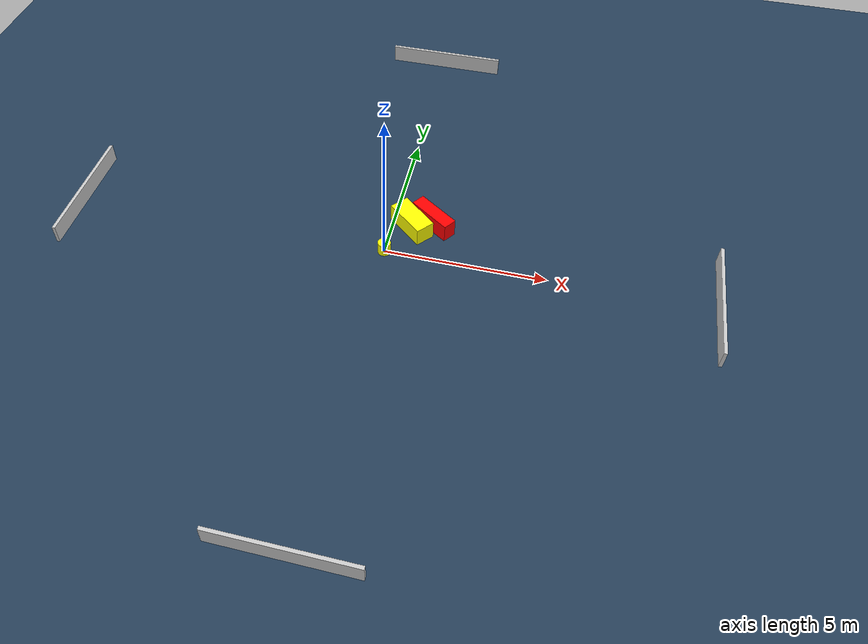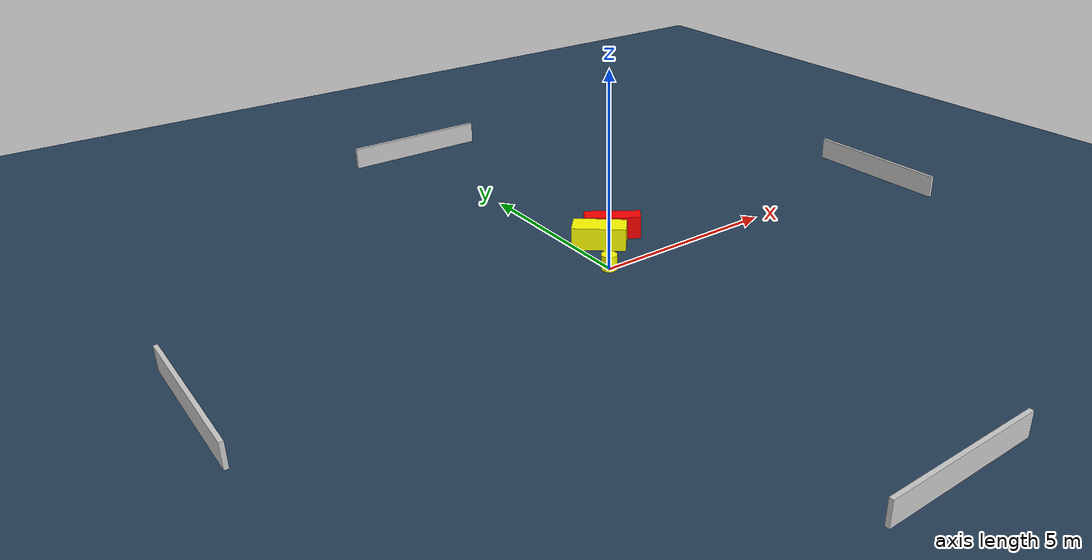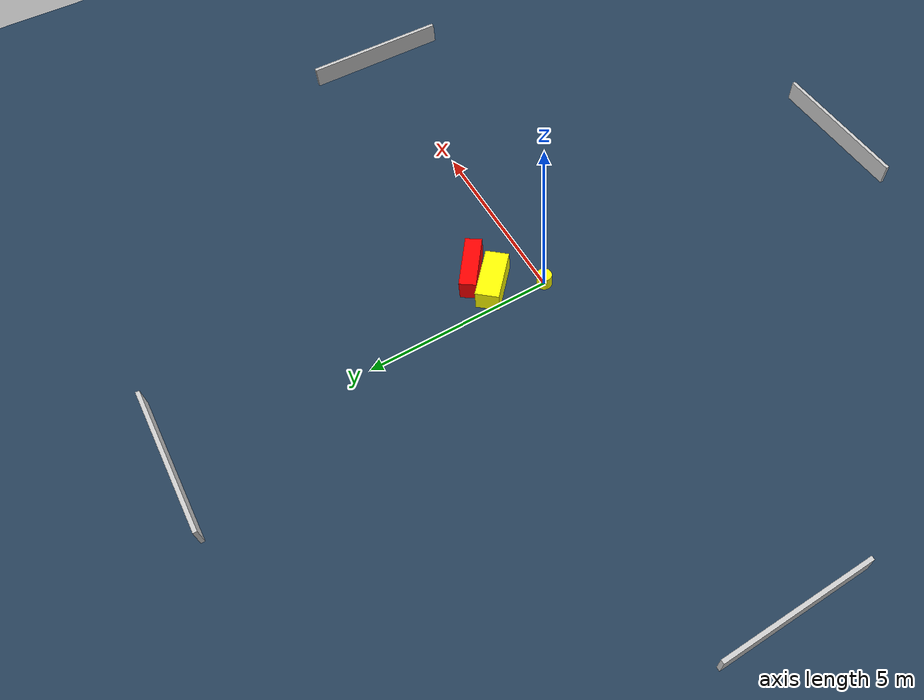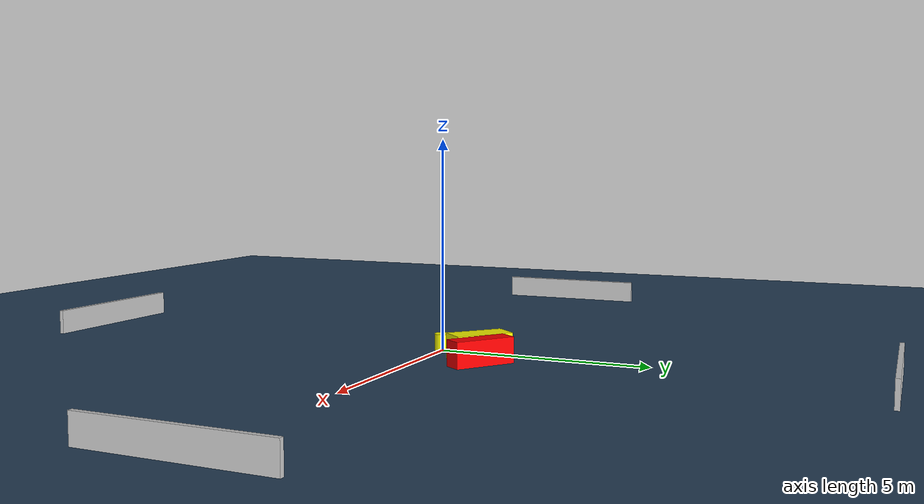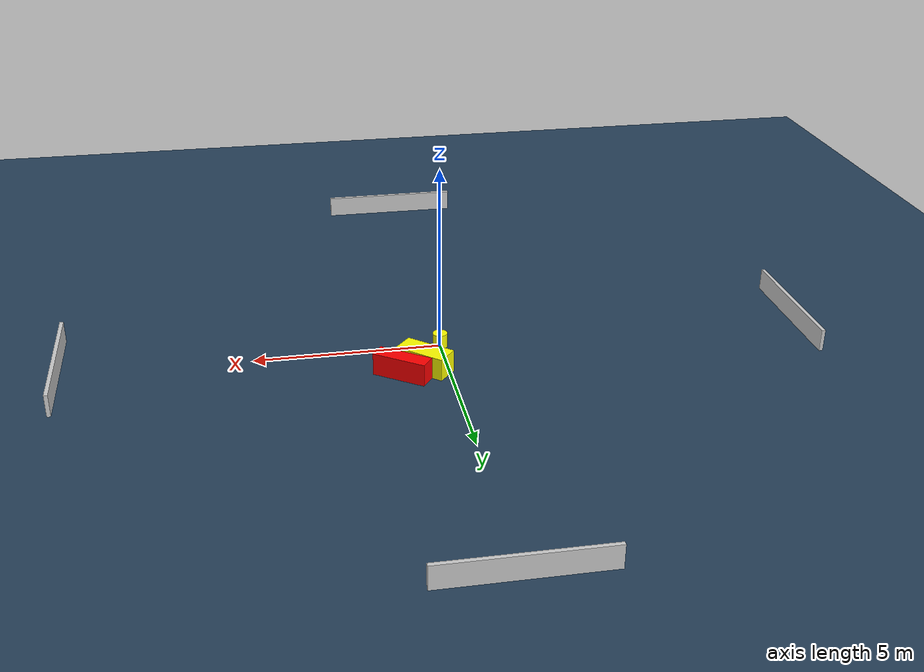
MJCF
<?xml version="1.0" ?>
<mujoco model="generated_environment">
  <option timestep="0.01" integrator="RK4" cone="elliptic"/>
  <default>
    <geom density="1"/>
  </default>
  <asset>
    <texture builtin="gradient" height="3072" name="skybox" rgb1="0.3 0.5 0.7" rgb2="0 0 0" type="skybox" width="512"/>
    <texture builtin="checker" height="300" name="groundplane" rgb1="0.2 0.3 0.4" rgb2="0.1 0.2 0.3" type="2d" width="300"/>
    <material name="groundplane" reflectance="0.2" texrepeat="5 5" texture="groundplane"/>
  </asset>
  <worldbody>
    <light dir="0 0 -1" directional="true" pos="0 0 1.5"/>
    <geom condim="3" friction="0.5 0.005 0.001" material="groundplane" name="floor" pos="0 0 0" size="0 0 0.05" type="plane"/>
    <body name="walls">
      <geom name="wall_1" condim="4" pos="-10.0 0.0 0.3" rgba="0.800000011920929 0.800000011920929 0.800000011920929 1.0" size="0.05 2.0 0.3" type="box"/>
      <geom name="wall_2" condim="4" pos="10.0 0.0 0.3" rgba="0.800000011920929 0.800000011920929 0.800000011920929 1.0" size="0.05 2.0 0.3" type="box"/>
      <geom name="wall_3" condim="4" pos="0.0 -10.0 0.3" rgba="0.800000011920929 0.800000011920929 0.800000011920929 1.0" size="2.0 0.05 0.3" type="box"/>
      <geom name="wall_4" condim="4" pos="0.0 10.0 0.3" rgba="0.800000011920929 0.800000011920929 0.800000011920929 1.0" size="2.0 0.05 0.3" type="box"/>
    </body>
    <body name="robot">
      <joint name="joint_x" type="slide" pos="0 0 0" axis="1 0 0"/>
      <joint name="joint_y" type="slide" pos="0 0 0" axis="0 1 0"/>
      <geom name="robot" type="cylinder" pos="0.0 0.0 0.2" size="0.2 0.2 0.0" mass="5.0" friction="1.0 0.005 0.0001" condim="4" rgba="1.0 1.0 0.0 1.0"/>
    </body>
    <body name="obstacle_1_movable">
      <geom name="obstacle_1_movable" condim="4" pos="0.6052807444178986 1.1961337806894106 0.3" euler="0 0 228.9342033387749" friction="0.0 0.005 0.001" rgba="1.0 1.0 0.0 1.0" size="0.31350086411333944 0.691674021193067 0.3" type="box" mass="0.1"/>
      <joint type="free"/>
    </body>
    <body name="obstacle_2_static">
      <geom name="obstacle_2_static" condim="4" pos="1.2374967597041546 1.4793603787263228 0.3" euler="0 0 234.5933065375871" friction="0.0 0.005 0.001" rgba="1.0 0.0 0.0 1.0" size="0.22420909561197613 0.7360763946094546 0.3" type="box"/>
    </body>
  </worldbody>
  <actuator>
    <motor name="actuator_x" joint="joint_x" gear="1" ctrlrange="-1 1"/>
    <motor name="actuator_y" joint="joint_y" gear="1" ctrlrange="-1 1"/>
  </actuator>
</mujoco>
